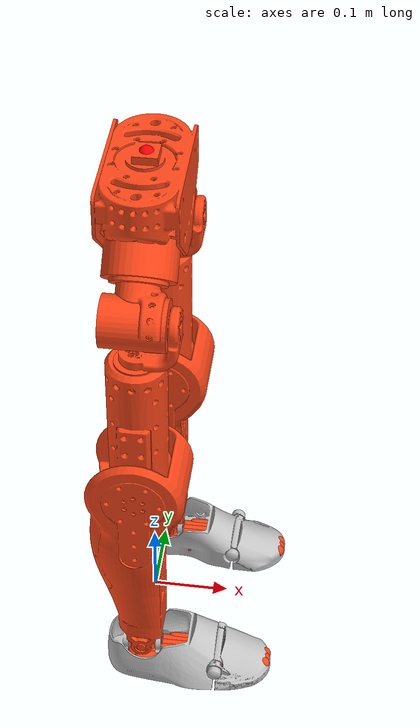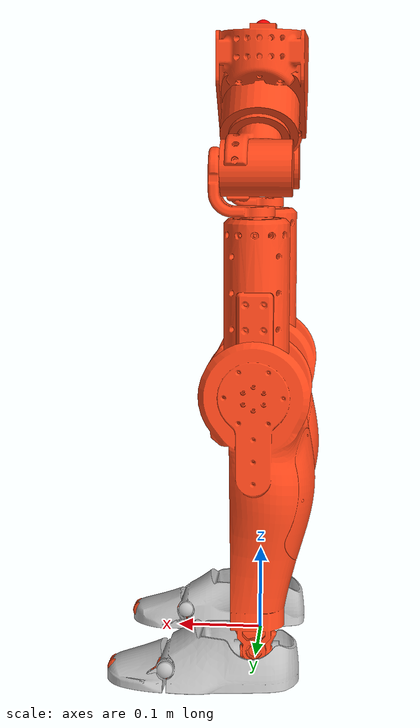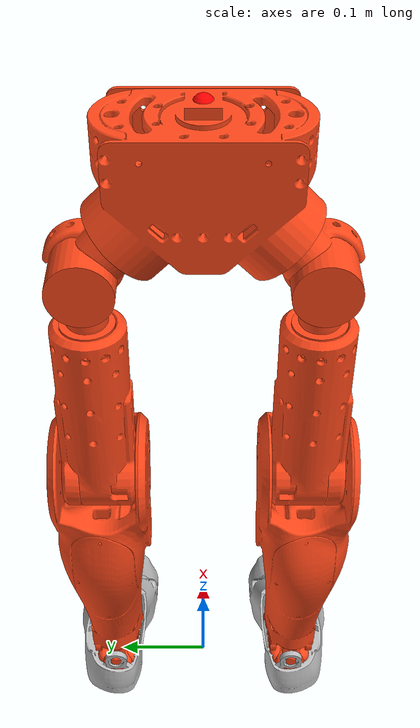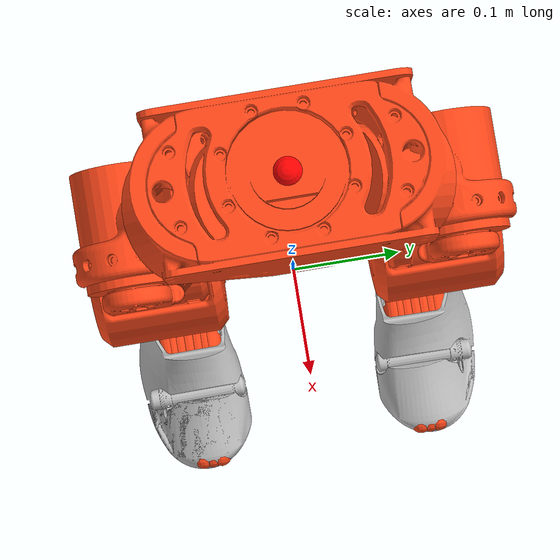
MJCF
<mujoco model="asimov_toe">
  <default>
    <default class="robot">
      <default class="motor">
        <joint />
        <motor />
      </default>
      <default class="visual">
        <geom material="visualgeom" contype="0" conaffinity="0" group="2" />
      </default>
      <default class="collision">
        <geom material="collision_material" condim="3" contype="0" conaffinity="1" priority="1" group="1" solref="0.005 1" solimp="0.99 0.999 1e-05" friction="1 0.01 0.01" />
        <default class="foot_capsule">
          <geom type="capsule" size="0.01" />
        </default>
      </default>
    </default>
  </default>

  <compiler angle="radian" />

  <asset>
    <material name="visualgeom" rgba="0.75294 0.75294 0.75294 1" />
    <material name="default_material" rgba="0.7 0.7 0.7 1" />
    <material name="collision_material" rgba="1.0 0.28 0.1 0.9" />
    <mesh name="pelvis_link.STL" file="pelvis_link.STL"/>
    <mesh name="left_hip_pitch_link.STL" file="left_hip_pitch_link.STL"/>
    <mesh name="left_hip_roll_link.STL" file="left_hip_roll_link.STL"/>
    <mesh name="left_hip_yaw_link.STL" file="left_hip_yaw_link.STL"/>
    <mesh name="left_knee_link.STL" file="left_knee_link.STL"/>
    <mesh name="left_ankle_pitch_link.STL" file="left_ankle_pitch_link.STL"/>
    <mesh name="left_ankle_roll_link.STL" file="left_ankle_roll_link.STL"/>
    <mesh name="left_toe_link.STL" file="left_toe_link.STL"/>
    <mesh name="right_hip_pitch_link.STL" file="right_hip_pitch_link.STL"/>
    <mesh name="right_hip_roll_link.STL" file="right_hip_roll_link.STL"/>
    <mesh name="right_hip_yaw_link.STL" file="right_hip_yaw_link.STL"/>
    <mesh name="right_knee_link.STL" file="right_knee_link.STL"/>
    <mesh name="right_ankle_pitch_link.STL" file="right_ankle_pitch_link.STL"/>
    <mesh name="right_ankle_roll_link.STL" file="right_ankle_roll_link.STL"/>
    <mesh name="right_toe_link.STL" file="right_toe_link.STL"/>
  </asset>

  <worldbody>
    <body name="pelvis_link" pos="0.00000000 0.00000000 0.71572740" quat="1 0 0 0" childclass="robot">
      <freejoint name="floating_base" />
      <inertial pos="-0.00071228 -3.4719E-07 -0.073826" quat="1.0 0.0 0.0 0.0" mass="3.3125" diaginertia="0.0033117 0.0028238 0.003564" />
      <site name="imu" pos="0.0 0.0 0.0" size="0.01" rgba="1 0 0 1" type="sphere" />

      <geom name="pelvis_link_collision" pos="0 0 0" quat="1.0 0.0 0.0 0.0" type="mesh" mesh="pelvis_link.STL" class="collision" />
      <geom name="pelvis_link_visual" pos="0 0 0" quat="1.0 0.0 0.0 0.0" material="visualgeom" type="mesh" mesh="pelvis_link.STL" class="visual" />
      <body name="left_hip_pitch_link" pos="0 0.056569 -0.10543" quat="1.0 0.0 0.0 0.0">
        <joint name="left_hip_pitch_joint" type="hinge" ref="0.0" class="motor" range="-2.094395 1" axis="0 0.70711 -0.70711" />
        <site name="left_hip_pitch_joint_site" pos="0 0 0" quat="1 0 0 0" />
        <inertial pos="0.00329 0.045581 -0.045581" quat="1.0 0.0 0.0 0.0" mass="0.92565" diaginertia="0.00053984 0.00066418 0.00066419" />
        <geom name="left_hip_pitch_link_collision" pos="0 0 0" quat="1.0 0.0 0.0 0.0" type="mesh" mesh="left_hip_pitch_link.STL" class="collision" />
        <geom name="left_hip_pitch_link_visual" pos="0 0 0" quat="1.0 0.0 0.0 0.0" material="visualgeom" type="mesh" mesh="left_hip_pitch_link.STL" class="visual" />
        <body name="left_hip_roll_link" pos="0 0.051265 -0.051265" quat="1.0 0.0 0.0 0.0">
          <joint name="left_hip_roll_joint" type="hinge" ref="0.0" class="motor" range="-0.785398 0.785398" axis="-1 0 0" />
          <site name="left_hip_roll_joint_site" pos="0 0 0" quat="1 0 0 0" />
          <inertial pos="0.01525 -0.00017964 -0.061059" quat="1.0 0.0 0.0 0.0" mass="0.83528" diaginertia="0.00054401 0.00063585 0.00038113" />
          <geom name="left_hip_roll_link_collision" pos="0 0 0" quat="1.0 0.0 0.0 0.0" type="mesh" mesh="left_hip_roll_link.STL" class="collision" />
          <geom name="left_hip_roll_link_visual" pos="0 0 0" quat="1.0 0.0 0.0 0.0" material="visualgeom" type="mesh" mesh="left_hip_roll_link.STL" class="visual" />
          <body name="left_hip_yaw_link" pos="0 0 -0.09275" quat="1.0 0.0 0.0 0.0">
            <joint name="left_hip_yaw_joint" type="hinge" ref="0.0" class="motor" range="-0.785398 0.785398" axis="0 0 -1" />
            <site name="left_hip_yaw_joint_site" pos="0 0 0" quat="1 0 0 0" />
            <inertial pos="7.0761E-05 0.00031363 -0.11496" quat="1.0 0.0 0.0 0.0" mass="1.2782" diaginertia="0.0024302 0.0025065 0.0007566" />
            <geom name="left_hip_yaw_link_collision" pos="0 0 0" quat="1.0 0.0 0.0 0.0" type="mesh" mesh="left_hip_yaw_link.STL" class="collision" />
            <geom name="left_hip_yaw_link_visual" pos="0 0 0" quat="1.0 0.0 0.0 0.0" material="visualgeom" type="mesh" mesh="left_hip_yaw_link.STL" class="visual" />
            <body name="left_knee_link" pos="0 0 -0.15489" quat="1.0 0.0 0.0 0.0">
              <joint name="left_knee_joint" type="hinge" ref="0.0" class="motor" range="0 1.5" axis="0 1 0" />
              <site name="left_knee_joint_site" pos="0 0 0" quat="1 0 0 0" />
              <inertial pos="-0.0025212 0.00051084 -0.10659" quat="1.0 0.0 0.0 0.0" mass="2.2481" diaginertia="0.0093797 0.0095623 0.0023403" />
              <geom name="left_knee_link_collision" pos="0 0 0" quat="1.0 0.0 0.0 0.0" type="mesh" mesh="left_knee_link.STL" class="collision" />
              <geom name="left_knee_link_visual" pos="0 0 0" quat="1.0 0.0 0.0 0.0" material="visualgeom" type="mesh" mesh="left_knee_link.STL" class="visual" />
              <body name="left_ankle_pitch_link" pos="0 0 -0.29466" quat="1.0 0.0 0.0 0.0">
                <joint name="left_ankle_pitch_joint" type="hinge" ref="0.0" class="motor" range="-0.349066 0.5" axis="0 1 0" />
                <site name="left_ankle_pitch_joint_site" pos="0 0 0" quat="1 0 0 0" />
                <inertial pos="-0.0011784 -2.4418E-08 -0.0061736" quat="1.0 0.0 0.0 0.0" mass="0.27369" diaginertia="6.4443e-05 8.1172e-05 4.7493e-05" />
                <geom name="left_ankle_pitch_link_collision" pos="0 0 0" quat="1.0 0.0 0.0 0.0" type="mesh" mesh="left_ankle_pitch_link.STL" class="collision" />
                <geom name="left_ankle_pitch_link_visual" pos="0 0 0" quat="1.0 0.0 0.0 0.0" material="visualgeom" type="mesh" mesh="left_ankle_pitch_link.STL" class="visual" />
                <body name="left_ankle_roll_link" pos="-0.0015 0 -0.01" quat="1.0 0.0 0.0 0.0">
                  <joint name="left_ankle_roll_joint" type="hinge" ref="0.0" class="motor" range="-0.349066 0.349066" axis="-1 0 0" />
                  <site name="left_ankle_roll_joint_site" pos="0 0 0" quat="1 0 0 0" />
                  <inertial pos="0.081381 -0.00033806 -0.015509" quat="1.0 0.0 0.0 0.0" mass="0.61291" diaginertia="0.00031968 0.00045036 0.00070504" />
                  <geom name="left_ankle_roll_link_visual" pos="0 0 0" quat="1.0 0.0 0.0 0.0" material="visualgeom" type="mesh" mesh="left_ankle_roll_link.STL" class="visual" />
                  <!-- Foot collision capsules - distributed contact surface -->
                  <geom name="left_foot1_collision" class="foot_capsule" fromto="0.08 -0.02 -0.02 0.04 -0.02 -0.02"/>
                  <geom name="left_foot2_collision" class="foot_capsule" fromto="0.0 -0.015 -0.02 0.10 -0.015 -0.02"/>
                  <geom name="left_foot3_collision" class="foot_capsule" fromto="-0.01 -0.008 -0.02 0.11 -0.008 -0.02"/>
                  <geom name="left_foot4_collision" class="foot_capsule" fromto="-0.015 0 -0.02 0.115 0 -0.02"/>
                  <geom name="left_foot5_collision" class="foot_capsule" fromto="-0.01 0.008 -0.02 0.11 0.008 -0.02"/>
                  <geom name="left_foot6_collision" class="foot_capsule" fromto="0.0 0.015 -0.02 0.10 0.015 -0.02"/>
                  <geom name="left_foot7_collision" class="foot_capsule" fromto="0.08 0.02 -0.02 0.04 0.02 -0.02"/>
                  <body name="left_toe_link" pos="0.10253 -0.0043664 -0.0067324" quat="1.0 0.0 0.0 0.0">
                    <joint name="left_toe_joint" type="hinge" ref="0.0" class="motor" range="-0.6 0.0" axis="0.010532 0.99994 0" />
                    <site name="left_toe_joint_site" pos="0 0 0" quat="1 0 0 0" />
                    <inertial pos="0.0320167773761624 0.000718248511968056 -0.0141312773022902" quat="1.0 0.0 0.0 0.0" mass="0.112221237946844" diaginertia="5.5351925218088e-05 3.65130809524718e-05 8.54029969529202e-05" />
                    <geom name="left_toe_link_visual" pos="0 0 0" quat="1.0 0.0 0.0 0.0" material="visualgeom" type="mesh" mesh="left_toe_link.STL" class="visual" />
                    <!-- Toe collision capsules -->
                    <geom name="left_toe1_collision" class="foot_capsule" fromto="0.0 -0.008 -0.015 0.06 -0.008 -0.015"/>
                    <geom name="left_toe2_collision" class="foot_capsule" fromto="0.0 0 -0.015 0.06 0 -0.015"/>
                    <geom name="left_toe3_collision" class="foot_capsule" fromto="0.0 0.008 -0.015 0.06 0.008 -0.015"/>
                  </body>
                </body>
              </body>
            </body>
          </body>
        </body>
      </body>
      <body name="right_hip_pitch_link" pos="0 -0.056569 -0.10543" quat="1.0 0.0 0.0 0.0">
        <joint name="right_hip_pitch_joint" type="hinge" ref="0.0" class="motor" range="-1 2.094395" axis="0 -0.70711 -0.70711" />
        <site name="right_hip_pitch_joint_site" pos="0 0 0" quat="1 0 0 0" />
        <inertial pos="0.0032901 -0.045581 -0.045581" quat="1.0 0.0 0.0 0.0" mass="0.92565" diaginertia="0.00053984 0.00066418 0.00066418" />
        <geom name="right_hip_pitch_link_collision" pos="0 0 0" quat="1.0 0.0 0.0 0.0" type="mesh" mesh="right_hip_pitch_link.STL" class="collision" />
        <geom name="right_hip_pitch_link_visual" pos="0 0 0" quat="1.0 0.0 0.0 0.0" material="visualgeom" type="mesh" mesh="right_hip_pitch_link.STL" class="visual" />
        <body name="right_hip_roll_link" pos="0 -0.051265 -0.051265" quat="1.0 0.0 0.0 0.0">
          <joint name="right_hip_roll_joint" type="hinge" ref="0.0" class="motor" range="-0.785398 0.785398" axis="-1 0 0" />
          <site name="right_hip_roll_joint_site" pos="0 0 0" quat="1 0 0 0" />
          <inertial pos="0.01525 0.0001796 -0.061059" quat="1.0 0.0 0.0 0.0" mass="0.83528" diaginertia="0.00054401 0.00063584 0.00038113" />
          <geom name="right_hip_roll_link_collision" pos="0 0 0" quat="1.0 0.0 0.0 0.0" type="mesh" mesh="right_hip_roll_link.STL" class="collision" />
          <geom name="right_hip_roll_link_visual" pos="0 0 0" quat="1.0 0.0 0.0 0.0" material="visualgeom" type="mesh" mesh="right_hip_roll_link.STL" class="visual" />
          <body name="right_hip_yaw_link" pos="0 0 -0.09275" quat="1.0 0.0 0.0 0.0">
            <joint name="right_hip_yaw_joint" type="hinge" ref="0.0" class="motor" range="-0.785398 0.785398" axis="0 0 -1" />
            <site name="right_hip_yaw_joint_site" pos="0 0 0" quat="1 0 0 0" />
            <inertial pos="7.1067E-05 -0.00031339 -0.11496" quat="1.0 0.0 0.0 0.0" mass="1.2782" diaginertia="0.0024302 0.0025065 0.0007566" />
            <geom name="right_hip_yaw_link_collision" pos="0 0 0" quat="1.0 0.0 0.0 0.0" type="mesh" mesh="right_hip_yaw_link.STL" class="collision" />
            <geom name="right_hip_yaw_link_visual" pos="0 0 0" quat="1.0 0.0 0.0 0.0" material="visualgeom" type="mesh" mesh="right_hip_yaw_link.STL" class="visual" />
            <body name="right_knee_link" pos="0 0 -0.15489" quat="1.0 0.0 0.0 0.0">
              <joint name="right_knee_joint" type="hinge" ref="0.0" class="motor" range="-1.5 0" axis="0 -1 0" />
              <site name="right_knee_joint_site" pos="0 0 0" quat="1 0 0 0" />
              <inertial pos="-0.0025213 -0.00051098 -0.10659" quat="1.0 0.0 0.0 0.0" mass="2.2481" diaginertia="0.0093796 0.0095623 0.0023403" />
              <geom name="right_knee_link_collision" pos="0 0 0" quat="1.0 0.0 0.0 0.0" type="mesh" mesh="right_knee_link.STL" class="collision" />
              <geom name="right_knee_link_visual" pos="0 0 0" quat="1.0 0.0 0.0 0.0" material="visualgeom" type="mesh" mesh="right_knee_link.STL" class="visual" />
              <body name="right_ankle_pitch_link" pos="0 0 -0.29466" quat="1.0 0.0 0.0 0.0">
                <joint name="right_ankle_pitch_joint" type="hinge" ref="0.0" class="motor" range="-0.5 0.349066" axis="0 -1 0" />
                <site name="right_ankle_pitch_joint_site" pos="0 0 0" quat="1 0 0 0" />
                <inertial pos="-0.0011784 5.9726E-08 -0.0061735" quat="1.0 0.0 0.0 0.0" mass="0.27369" diaginertia="6.4442e-05 8.1171e-05 4.7493e-05" />
                <geom name="right_ankle_pitch_link_collision" pos="0 0 0" quat="1.0 0.0 0.0 0.0" type="mesh" mesh="right_ankle_pitch_link.STL" class="collision" />
                <geom name="right_ankle_pitch_link_visual" pos="0 0 0" quat="1.0 0.0 0.0 0.0" material="visualgeom" type="mesh" mesh="right_ankle_pitch_link.STL" class="visual" />
                <body name="right_ankle_roll_link" pos="-0.0015 0 -0.01" quat="1.0 0.0 0.0 0.0">
                  <joint name="right_ankle_roll_joint" type="hinge" ref="0.0" class="motor" range="-0.349066 0.349066" axis="-1 0 0" />
                  <site name="right_ankle_roll_joint_site" pos="0 0 0" quat="1 0 0 0" />
                  <inertial pos="0.081347 0.00027474 -0.015509" quat="1.0 0.0 0.0 0.0" mass="0.61291" diaginertia="0.0003197 0.00045029 0.00070498" />
                  <geom name="right_ankle_roll_link_visual" pos="0 0 0" quat="1.0 0.0 0.0 0.0" material="visualgeom" type="mesh" mesh="right_ankle_roll_link.STL" class="visual" />
                  <!-- Foot collision capsules - distributed contact surface -->
                  <geom name="right_foot1_collision" class="foot_capsule" fromto="0.08 -0.02 -0.02 0.04 -0.02 -0.02"/>
                  <geom name="right_foot2_collision" class="foot_capsule" fromto="0.0 -0.015 -0.02 0.10 -0.015 -0.02"/>
                  <geom name="right_foot3_collision" class="foot_capsule" fromto="-0.01 -0.008 -0.02 0.11 -0.008 -0.02"/>
                  <geom name="right_foot4_collision" class="foot_capsule" fromto="-0.015 0 -0.02 0.115 0 -0.02"/>
                  <geom name="right_foot5_collision" class="foot_capsule" fromto="-0.01 0.008 -0.02 0.11 0.008 -0.02"/>
                  <geom name="right_foot6_collision" class="foot_capsule" fromto="0.0 0.015 -0.02 0.10 0.015 -0.02"/>
                  <geom name="right_foot7_collision" class="foot_capsule" fromto="0.08 0.02 -0.02 0.04 0.02 -0.02"/>
                  <body name="right_toe_link" pos="0.10247 0.0042796 -0.0067324" quat="1.0 0.0 0.0 0.0">
                    <joint name="right_toe_joint" type="hinge" ref="0.0" class="motor" range="0 0.6" axis="0.0074685 -0.99997 0" />
                    <site name="right_toe_joint_site" pos="0 0 0" quat="1 0 0 0" />
                    <inertial pos="0.0320141754360937 -0.000816708013105544 -0.0141309094649689" quat="1.0 0.0 0.0 0.0" mass="0.112221754054884" diaginertia="5.5358948695321e-05 3.65052769951383e-05 8.54017357052965e-05" />
                    <geom name="right_toe_link_visual" pos="0 0 0" quat="1.0 0.0 0.0 0.0" material="visualgeom" type="mesh" mesh="right_toe_link.STL" class="visual" />
                    <!-- Toe collision capsules -->
                    <geom name="right_toe1_collision" class="foot_capsule" fromto="0.0 -0.008 -0.015 0.06 -0.008 -0.015"/>
                    <geom name="right_toe2_collision" class="foot_capsule" fromto="0.0 0 -0.015 0.06 0 -0.015"/>
                    <geom name="right_toe3_collision" class="foot_capsule" fromto="0.0 0.008 -0.015 0.06 0.008 -0.015"/>
                  </body>
                </body>
              </body>
            </body>
          </body>
        </body>
      </body>
      <site name="world_site" pos="0 0 0" quat="1 0 0 0" />
      <camera name="front_camera" mode="track" fovy="90.0" quat="4.329780281177467e-17 4.329780281177466e-17 0.7071067811865475 0.7071067811865476" pos="0.0 2.0 0.5" />
      <camera name="side_camera" mode="track" fovy="90.0" quat="-0.5 -0.4999999999999999 0.5 0.5000000000000001" pos="-2.0 0.0 0.5" />
    </body>
  </worldbody>

  <!-- Fixed tendons implementing ankle A/B linearized mapping -->
  <tendon>
    <!-- Left ankle: A = -L*theta - d*phi, B = -L*theta + d*phi -->
    <fixed name="left_ankle_A">
      <joint joint="left_ankle_pitch_joint" coef="-0.09"/>
      <joint joint="left_ankle_roll_joint" coef="-0.02"/>
    </fixed>
    <fixed name="left_ankle_B">
      <joint joint="left_ankle_pitch_joint" coef="-0.09"/>
      <joint joint="left_ankle_roll_joint" coef="0.02"/>
    </fixed>

    <!-- Right ankle (note pitch axis flips): A = +L*theta - d*phi, B = +L*theta + d*phi -->
    <fixed name="right_ankle_A">
      <joint joint="right_ankle_pitch_joint" coef="0.09"/>
      <joint joint="right_ankle_roll_joint" coef="-0.02"/>
    </fixed>
    <fixed name="right_ankle_B">
      <joint joint="right_ankle_pitch_joint" coef="0.09"/>
      <joint joint="right_ankle_roll_joint" coef="0.02"/>
    </fixed>
  </tendon>

  <!-- Tendon position actuators for A/B control (length targets in meters) -->
  <!-- Forcerange set to 36 Nm based on encos current limits -->
  <actuator>
    <position name="left_ankle_A"  tendon="left_ankle_A"  kp="300" ctrllimited="true" ctrlrange="-0.08 0.08" forcerange="-72 72"/>
    <position name="left_ankle_B"  tendon="left_ankle_B"  kp="300" ctrllimited="true" ctrlrange="-0.08 0.08" forcerange="-72 72"/>
    <position name="right_ankle_A" tendon="right_ankle_A" kp="300" ctrllimited="true" ctrlrange="-0.08 0.08" forcerange="-72 72"/>
    <position name="right_ankle_B" tendon="right_ankle_B" kp="300" ctrllimited="true" ctrlrange="-0.08 0.08" forcerange="-72 72"/>
  </actuator>

  <contact>
    <exclude body1="pelvis_link" body2="left_hip_pitch_link" />
    <exclude body1="left_hip_pitch_link" body2="left_hip_roll_link" />
    <exclude body1="left_hip_roll_link" body2="left_hip_yaw_link" />
    <exclude body1="left_hip_yaw_link" body2="left_knee_link" />
    <exclude body1="left_knee_link" body2="left_ankle_pitch_link" />
    <exclude body1="left_ankle_pitch_link" body2="left_ankle_roll_link" />
    <exclude body1="left_ankle_roll_link" body2="left_toe_link" />
    <exclude body1="pelvis_link" body2="right_hip_pitch_link" />
    <exclude body1="right_hip_pitch_link" body2="right_hip_roll_link" />
    <exclude body1="right_hip_roll_link" body2="right_hip_yaw_link" />
    <exclude body1="right_hip_yaw_link" body2="right_knee_link" />
    <exclude body1="right_knee_link" body2="right_ankle_pitch_link" />
    <exclude body1="right_ankle_pitch_link" body2="right_ankle_roll_link" />
    <exclude body1="right_ankle_roll_link" body2="right_toe_link" />
  </contact>

  <sensor>
    <!-- IMU sensors at pelvis -->
    <!-- Noise values from empirical robotics measurements with LSM6DSOX -->
    <!-- These include real-world effects: vibrations, quantization, mounting, etc. -->
    <!-- Gyro: 0.804% of ±2000 deg/s, Accel: 0.203% of ±16g -->
    <!-- Source: Empirical measurements from robotics research using LSM6DSOX -->
    <gyro name="imu_gyro" site="imu" noise="0.280649" cutoff="34.9" />
    <accelerometer name="imu_accel" site="imu" noise="0.318629" cutoff="157" />
    <framequat name="imu_quat" objtype="site" objname="imu" />
    <framelinvel name="imu_lin_vel" objtype="site" objname="imu" />
    <frameangvel name="imu_ang_vel" objtype="site" objname="imu" />

    <!-- Angular momentum sensor for whole robot -->
    <subtreeangmom name="root_angmom" body="pelvis_link" />

    <!-- Joint site sensors (for debugging) -->
    <framepos name="left_hip_pitch_joint_site_pos" objtype="site" objname="left_hip_pitch_joint_site" />
    <framequat name="left_hip_pitch_joint_site_quat" objtype="site" objname="left_hip_pitch_joint_site" />
    <framelinvel name="left_hip_pitch_joint_site_linvel" objtype="site" objname="left_hip_pitch_joint_site" />
    <frameangvel name="left_hip_pitch_joint_site_angvel" objtype="site" objname="left_hip_pitch_joint_site" />
    <velocimeter name="left_hip_pitch_joint_site_vel" site="left_hip_pitch_joint_site" />
  </sensor>
</mujoco>
